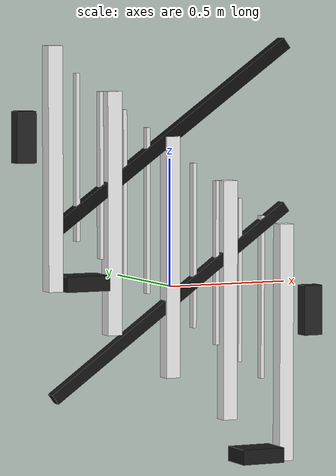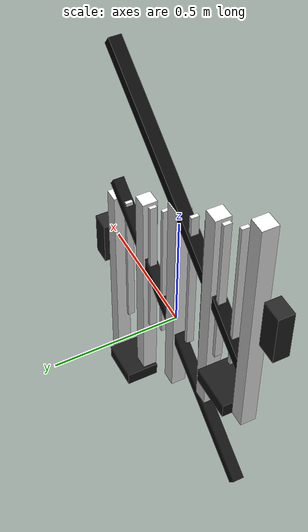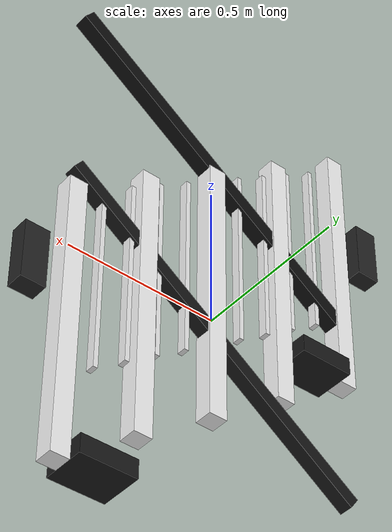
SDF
<?xml version="1.0"?>
<sdf version="1.7">
  <model name="guardrail_stair_1m_v2">
    <static>true</static>

    <link name="guardrail_link">
      <pose>0 0 0 0 0 0</pose>

      <!-- ==========================
           COLLISION
           ========================== -->

      <!-- Sloped TOP handrail -->
      <collision name="col_handrail_top">
        <pose>0 0 0.59 0 -0.624023 0</pose>
        <geometry><box><size>1.233 0.05 0.05</size></box></geometry>
      </collision>

      <!-- Sloped BOTTOM rail -->
      <collision name="col_rail_bottom">
        <pose>0 0 -0.06 0 -0.624023 0</pose>
        <geometry><box><size>1.233 0.045 0.045</size></box></geometry>
      </collision>

      <!-- Main posts (upright) - lightweight collision only -->
      <collision name="col_post_0">
        <pose>-0.50 0 0.475 0 0 0</pose>
        <geometry><box><size>0.06 0.06 0.95</size></box></geometry>
      </collision>
      <collision name="col_post_2">
        <pose>0.00 0 0.115 0 0 0</pose>
        <geometry><box><size>0.06 0.06 0.95</size></box></geometry>
      </collision>
      <collision name="col_post_4">
        <pose>0.50 0 -0.245 0 0 0</pose>
        <geometry><box><size>0.06 0.06 0.95</size></box></geometry>
      </collision>

      <!-- Feet pads -->
      <collision name="col_foot_left">
        <pose>-0.38 0 0.03 0 0 0</pose>
        <geometry><box><size>0.18 0.14 0.06</size></box></geometry>
      </collision>
      <collision name="col_foot_right">
        <pose>0.38 0 -0.69 0 0 0</pose>
        <geometry><box><size>0.18 0.14 0.06</size></box></geometry>
      </collision>

      <!-- ==========================
           VISUAL
           ========================== -->

      <!-- Top sloped handrail (black) -->
      <visual name="vis_handrail_top">
        <pose>0 0 0.59 0 -0.624023 0</pose>
        <geometry><box><size>1.233 0.05 0.05</size></box></geometry>
        <material>
          <ambient>0.02 0.02 0.02 1</ambient>
          <diffuse>0.05 0.05 0.05 1</diffuse>
          <specular>0.25 0.25 0.25 1</specular>
        </material>
      </visual>

      <!-- Bottom sloped rail (black/dark) -->
      <visual name="vis_rail_bottom">
        <pose>0 0 -0.06 0 -0.624023 0</pose>
        <geometry><box><size>1.233 0.045 0.045</size></box></geometry>
        <material>
          <ambient>0.03 0.03 0.03 1</ambient>
          <diffuse>0.08 0.08 0.08 1</diffuse>
        </material>
      </visual>

      <!-- Upright posts (white): x=-0.5,-0.25,0,0.25,0.5  / base z: 0,-0.18,-0.36,-0.54,-0.72 -->
      <!-- Height stays 0.95, because base and top rail descend with same slope -->
      <visual name="vis_post_0">
        <pose>-0.50 0 0.475 0 0 0</pose>
        <geometry><box><size>0.06 0.06 0.95</size></box></geometry>
        <material><diffuse>0.95 0.95 0.95 1</diffuse></material>
      </visual>

      <visual name="vis_post_1">
        <pose>-0.25 0 0.295 0 0 0</pose>
        <geometry><box><size>0.06 0.06 0.95</size></box></geometry>
        <material><diffuse>0.95 0.95 0.95 1</diffuse></material>
      </visual>

      <visual name="vis_post_2">
        <pose>0.00 0 0.115 0 0 0</pose>
        <geometry><box><size>0.06 0.06 0.95</size></box></geometry>
        <material><diffuse>0.95 0.95 0.95 1</diffuse></material>
      </visual>

      <visual name="vis_post_3">
        <pose>0.25 0 -0.065 0 0 0</pose>
        <geometry><box><size>0.06 0.06 0.95</size></box></geometry>
        <material><diffuse>0.95 0.95 0.95 1</diffuse></material>
      </visual>

      <visual name="vis_post_4">
        <pose>0.50 0 -0.245 0 0 0</pose>
        <geometry><box><size>0.06 0.06 0.95</size></box></geometry>
        <material><diffuse>0.95 0.95 0.95 1</diffuse></material>
      </visual>

      <!-- Feet pads -->
      <visual name="vis_foot_left">
        <pose>-0.38 0 0.03 0 0 0</pose>
        <geometry><box><size>0.18 0.14 0.06</size></box></geometry>
        <material><diffuse>0.10 0.10 0.10 1</diffuse></material>
      </visual>

      <visual name="vis_foot_right">
        <pose>0.38 0 -0.69 0 0 0</pose>
        <geometry><box><size>0.18 0.14 0.06</size></box></geometry>
        <material><diffuse>0.10 0.10 0.10 1</diffuse></material>
      </visual>

      <!-- Vertical bars (white) - UPRIGHT and CORRECT HEIGHT (0.65) -->
      <!-- Bar center z(x) = 0.625 - 0.72*(x+0.5); bar height = 0.65 -->
      <visual name="vis_bar_01"><pose>-0.40 0 0.517 0 0 0</pose><geometry><box><size>0.015 0.03 0.65</size></box></geometry><material><diffuse>0.92 0.92 0.92 1</diffuse></material></visual>
      <visual name="vis_bar_02"><pose>-0.30 0 0.445 0 0 0</pose><geometry><box><size>0.015 0.03 0.65</size></box></geometry><material><diffuse>0.92 0.92 0.92 1</diffuse></material></visual>
      <visual name="vis_bar_03"><pose>-0.20 0 0.373 0 0 0</pose><geometry><box><size>0.015 0.03 0.65</size></box></geometry><material><diffuse>0.92 0.92 0.92 1</diffuse></material></visual>
      <visual name="vis_bar_04"><pose>-0.10 0 0.301 0 0 0</pose><geometry><box><size>0.015 0.03 0.65</size></box></geometry><material><diffuse>0.92 0.92 0.92 1</diffuse></material></visual>
      <visual name="vis_bar_05"><pose>0.00  0 0.229 0 0 0</pose><geometry><box><size>0.015 0.03 0.65</size></box></geometry><material><diffuse>0.92 0.92 0.92 1</diffuse></material></visual>
      <visual name="vis_bar_06"><pose>0.10  0 0.157 0 0 0</pose><geometry><box><size>0.015 0.03 0.65</size></box></geometry><material><diffuse>0.92 0.92 0.92 1</diffuse></material></visual>
      <visual name="vis_bar_07"><pose>0.20  0 0.085 0 0 0</pose><geometry><box><size>0.015 0.03 0.65</size></box></geometry><material><diffuse>0.92 0.92 0.92 1</diffuse></material></visual>
      <visual name="vis_bar_08"><pose>0.30  0 0.013 0 0 0</pose><geometry><box><size>0.015 0.03 0.65</size></box></geometry><material><diffuse>0.92 0.92 0.92 1</diffuse></material></visual>
      <visual name="vis_bar_09"><pose>0.40  0 -0.059 0 0 0</pose><geometry><box><size>0.015 0.03 0.65</size></box></geometry><material><diffuse>0.92 0.92 0.92 1</diffuse></material></visual>

      <!-- connector blocks (optional aesthetics) -->
      <visual name="vis_joint_left">
        <pose>-0.62 0 0.60 0 0 0</pose>
        <geometry><box><size>0.08 0.06 0.20</size></box></geometry>
        <material><diffuse>0.14 0.14 0.14 1</diffuse></material>
      </visual>

      <visual name="vis_joint_right">
        <pose>0.62 0 -0.12 0 0 0</pose>
        <geometry><box><size>0.08 0.06 0.20</size></box></geometry>
        <material><diffuse>0.14 0.14 0.14 1</diffuse></material>
      </visual>

      <self_collide>false</self_collide>
      <enable_wind>false</enable_wind>
      <kinematic>false</kinematic>
    </link>
  </model>
</sdf>
